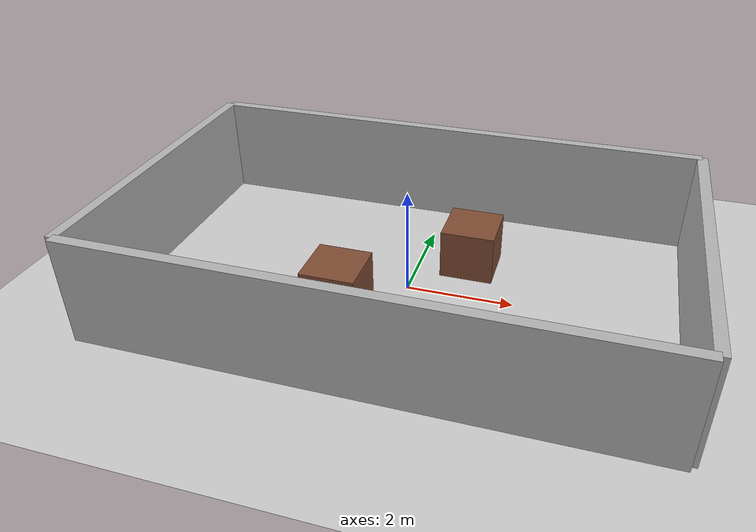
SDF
<?xml version="1.0"?>
<sdf version="1.6">
  <world name="warehouse">

    <!-- A global light source -->
    <include>
      <uri>model://sun</uri>
    </include>

    <!-- A ground plane -->
    <include>
      <uri>model://ground_plane</uri>
    </include>

    <!-- Warehouse walls -->
    <model name="warehouse_walls">
      <static>true</static>

      <!-- Floor -->
      <link name="floor">
        <pose>0 0 0 0 0 0</pose>
        <visual name="floor_visual">
          <geometry>
            <box>
              <size>10 6 0.1</size>
            </box>
          </geometry>
          <material>
            <ambient>0.8 0.8 0.8 1</ambient>
            <diffuse>0.8 0.8 0.8 1</diffuse>
          </material>
        </visual>
        <collision name="floor_collision">
          <geometry>
            <box>
              <size>10 6 0.1</size>
            </box>
          </geometry>
        </collision>
      </link>

      <!-- North wall -->
      <link name="north_wall">
        <pose>0 3 1 0 0 0</pose>
        <visual name="north_wall_visual">
          <geometry>
            <box>
              <size>10 0.2 2</size>
            </box>
          </geometry>
          <material>
            <ambient>0.7 0.7 0.7 1</ambient>
            <diffuse>0.7 0.7 0.7 1</diffuse>
          </material>
        </visual>
        <collision name="north_wall_collision">
          <geometry>
            <box>
              <size>10 0.2 2</size>
            </box>
          </geometry>
        </collision>
      </link>

      <!-- South wall -->
      <link name="south_wall">
        <pose>0 -3 1 0 0 0</pose>
        <visual name="south_wall_visual">
          <geometry>
            <box>
              <size>10 0.2 2</size>
            </box>
          </geometry>
          <material>
            <ambient>0.7 0.7 0.7 1</ambient>
            <diffuse>0.7 0.7 0.7 1</diffuse>
          </material>
        </visual>
        <collision name="south_wall_collision">
          <geometry>
            <box>
              <size>10 0.2 2</size>
            </box>
          </geometry>
        </collision>
      </link>

      <!-- East wall -->
      <link name="east_wall">
        <pose>5 0 1 0 0 0</pose>
        <visual name="east_wall_visual">
          <geometry>
            <box>
              <size>0.2 6 2</size>
            </box>
          </geometry>
          <material>
            <ambient>0.7 0.7 0.7 1</ambient>
            <diffuse>0.7 0.7 0.7 1</diffuse>
          </material>
        </visual>
        <collision name="east_wall_collision">
          <geometry>
            <box>
              <size>0.2 6 2</size>
            </box>
          </geometry>
        </collision>
      </link>

      <!-- West wall -->
      <link name="west_wall">
        <pose>-5 0 1 0 0 0</pose>
        <visual name="west_wall_visual">
          <geometry>
            <box>
              <size>0.2 6 2</size>
            </box>
          </geometry>
          <material>
            <ambient>0.7 0.7 0.7 1</ambient>
            <diffuse>0.7 0.7 0.7 1</diffuse>
          </material>
        </visual>
        <collision name="west_wall_collision">
          <geometry>
            <box>
              <size>0.2 6 2</size>
            </box>
          </geometry>
        </collision>
      </link>
    </model>

    <!-- Some obstacles -->
    <model name="obstacle1">
      <static>true</static>
      <pose>1 1 0.5 0 0 0</pose>
      <link name="obstacle1_link">
        <visual name="obstacle1_visual">
          <geometry>
            <box>
              <size>1 1 1</size>
            </box>
          </geometry>
          <material>
            <ambient>0.5 0.3 0.2 1</ambient>
            <diffuse>0.5 0.3 0.2 1</diffuse>
          </material>
        </visual>
        <collision name="obstacle1_collision">
          <geometry>
            <box>
              <size>1 1 1</size>
            </box>
          </geometry>
        </collision>
      </link>
    </model>

    <model name="obstacle2">
      <static>true</static>
      <pose>-1 -1 0.5 0 0 0</pose>
      <link name="obstacle2_link">
        <visual name="obstacle2_visual">
          <geometry>
            <box>
              <size>1 1 1</size>
            </box>
          </geometry>
          <material>
            <ambient>0.5 0.3 0.2 1</ambient>
            <diffuse>0.5 0.3 0.2 1</diffuse>
          </material>
        </visual>
        <collision name="obstacle2_collision">
          <geometry>
            <box>
              <size>1 1 1</size>
            </box>
          </geometry>
        </collision>
      </link>
    </model>

  </world>
</sdf>
